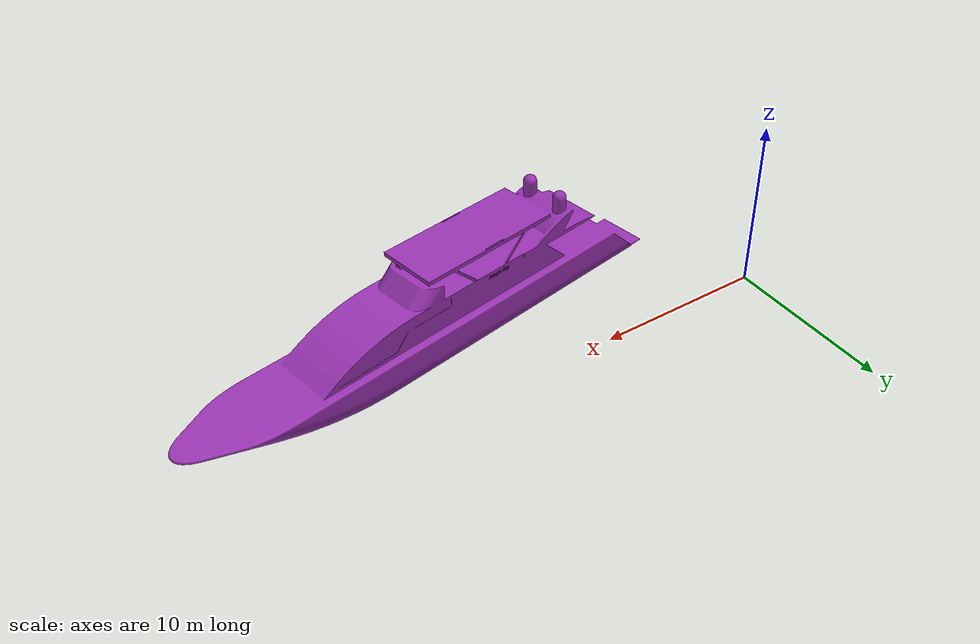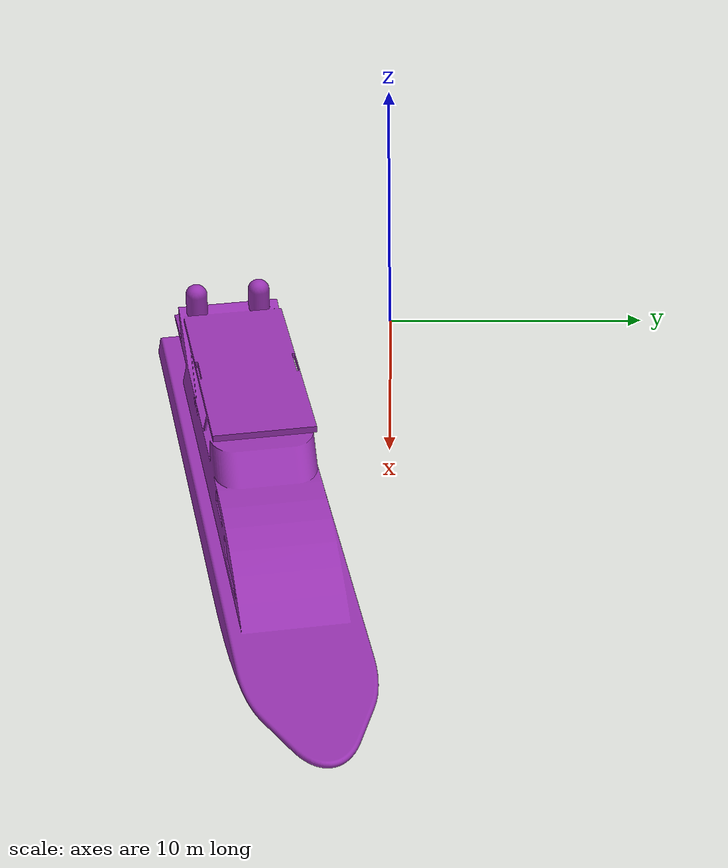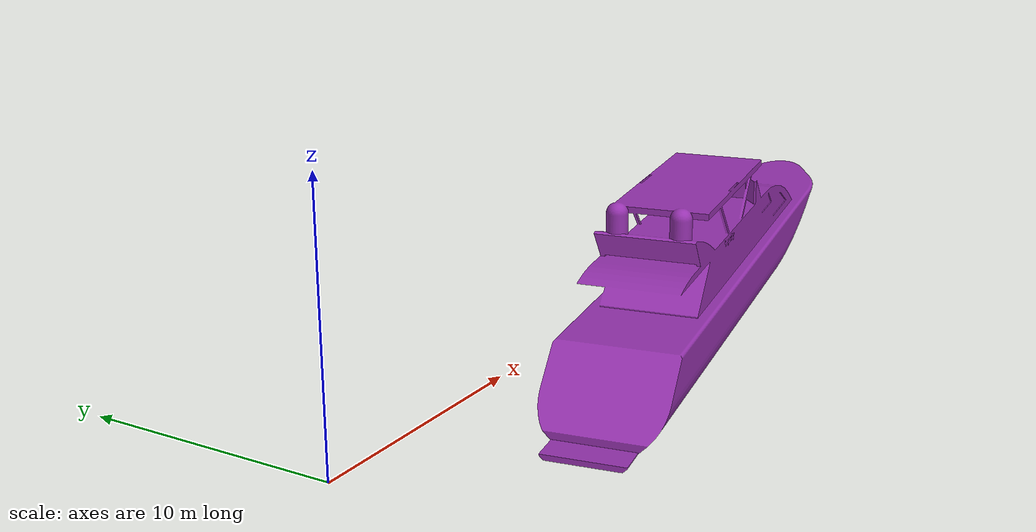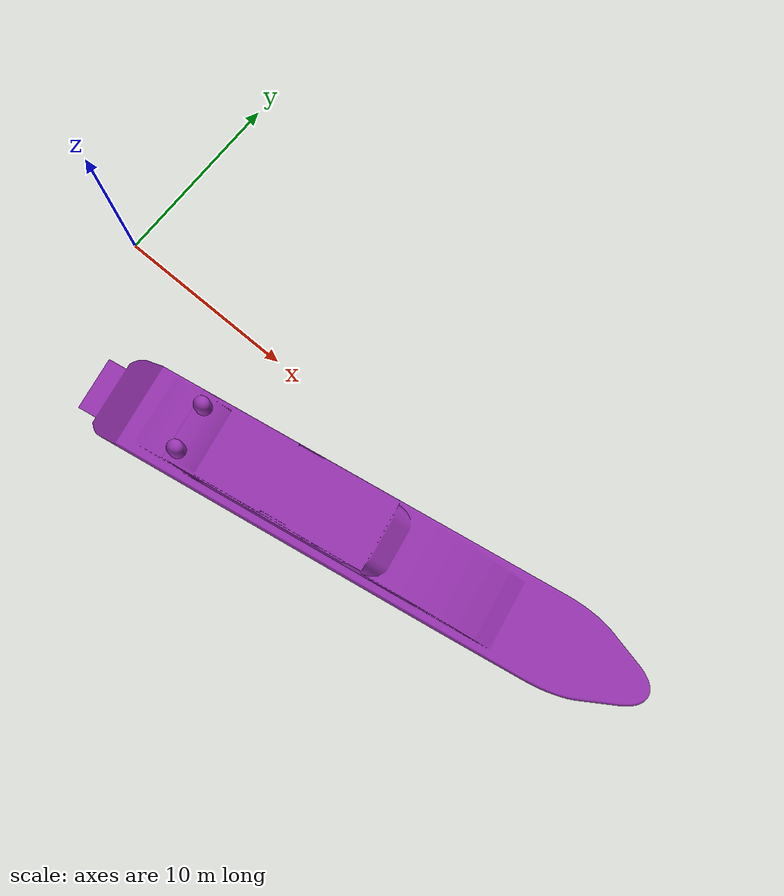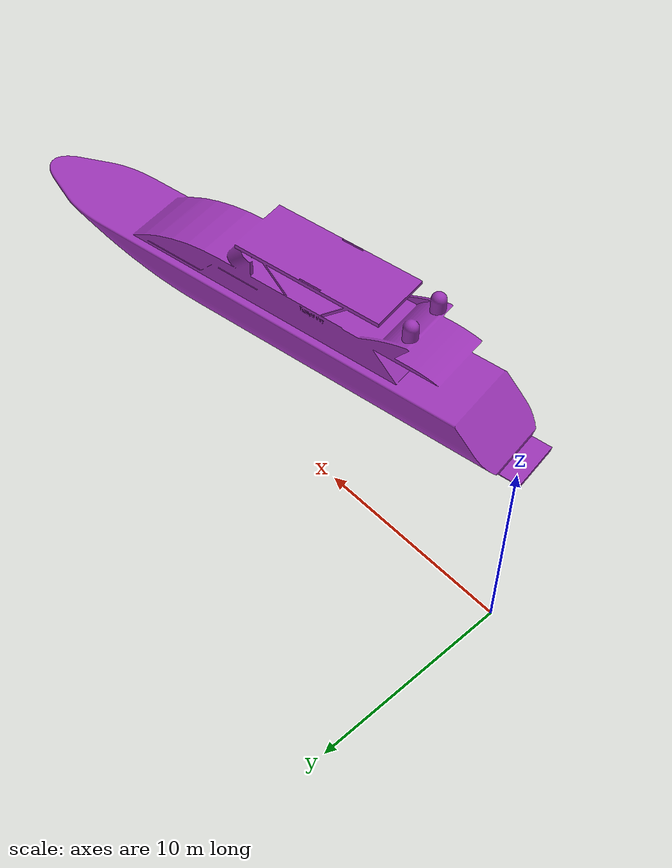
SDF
<?xml version="1.0" ?>
<sdf version="1.5">
  <model name="yacht_v1">
    <link name="link">
      <inertial>
        <!-- Mass determined based on buoyancy geometry so object
             floats at mid-point of sphere -->
        <mass>20</mass>
        <!-- Mark only - based on cylinder -->
        <inertia>
          <ixx>1.0</ixx>
          <ixy>0</ixy>
          <ixz>0</ixz>
          <iyy>1.0</iyy>
          <iyz>0</iyz>
          <izz>0.1</izz>
        </inertia>
      </inertial>
      <collision name="collision">
        <geometry>
          <box>
            <size>3 3 3.5</size>
            <scale>0.003 0.003 0.003</scale>
          </box>
        </geometry>
        <surface>
          <friction>
            <ode>
              <mu>100</mu>
              <mu2>50</mu2>
            </ode>
          </friction>
        </surface>
      </collision>
      <visual name="visual">
        <pose>0 0 0 1.5708 0 0</pose>
        <geometry>
          <mesh>
            <uri>model://yacht_v1/meshes/Yacht v1.STL</uri>
            <scale>0.003 0.003 0.003</scale>
          </mesh>
        </geometry>
        <material>
          <script>
            <uri>file://media/materials/scripts/gazebo.material</uri>
            <name>Gazebo/PurpleGlow</name>
          </script>
        </material>
      </visual>
    </link>
    <plugin name="motion_planning_plugin_x" filename="libmotion_planning_plugin_x.so"/>
  </model>
</sdf>
